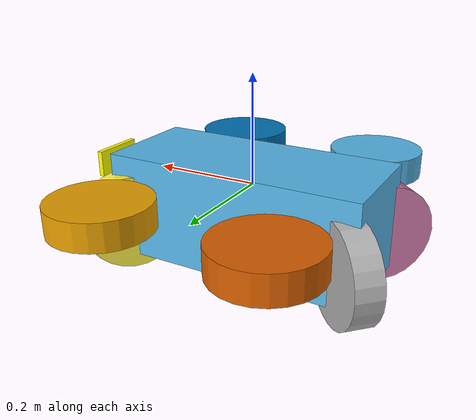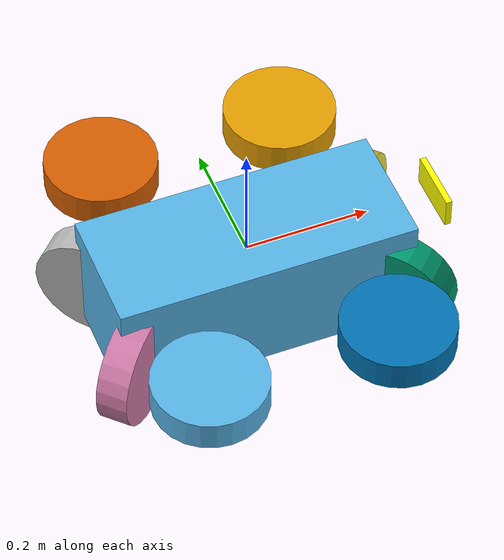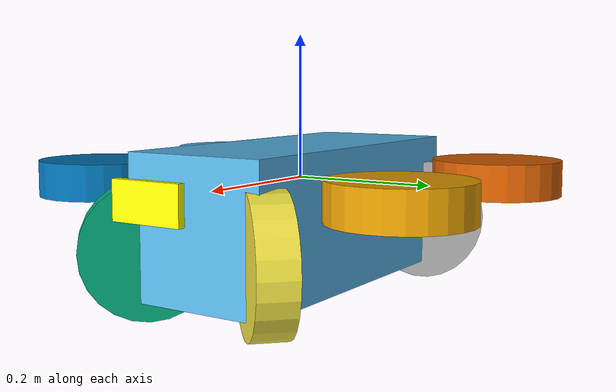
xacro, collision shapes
<?xml version="1.0"?>
<robot name="nemo_auv" xmlns:xacro="http://www.ros.org/wiki/xacro">

    <xacro:property name="ns" value="nemo_auv"/>
    <xacro:include filename="base_link.xacro"/>
    <xacro:include filename="thruster_cw.xacro"/>
    <xacro:include filename="thruster_ccw.xacro"/>
    <xacro:include filename="imu.xacro"/>
    <xacro:include filename="camera_macro.xacro"/>

    <gazebo>
        <plugin filename="gz-sim-joint-state-publisher-system" name="gz::sim::systems::JointStatePublisher"/>

        <plugin
            filename="gz-sim-odometry-publisher-system"
            name="gz::sim::systems::OdometryPublisher">
            <odom_frame>world</odom_frame>
            <dimensions>3</dimensions>
            <robot_base_frame>base_link</robot_base_frame>
            <odom_publish_frequency>20</odom_publish_frequency>
        </plugin>

        <plugin
            filename="gz-sim-pose-publisher-system"
            name="gz::sim::systems::PosePublisher">
            <publish_link_pose>false</publish_link_pose>
            <publish_collision_pose>false</publish_collision_pose>
            <publish_visual_pose>false</publish_visual_pose>
            <publish_nested_model_pose>true</publish_nested_model_pose>
        </plugin>
        <plugin
        filename="gz-sim-hydrodynamics-system"
        name="gz::sim::systems::Hydrodynamics">
            <link_name>base_link</link_name>
            <water_density>1000.0</water_density>
            <!-- Added mass: -->
            <xDotU>0</xDotU>
            <yDotV>0</yDotV>
            <zDotW>0</zDotW>
            <kDotP>0</kDotP>
            <mDotQ>0</mDotQ>
            <nDotR>0</nDotR>
            <!-- First order stability derivative: -->
            <xU>-10.0</xU>
            <yV>-10.0</yV>
            <zW>-5.0</zW>
            <kP>-5.0</kP>
            <mQ>-5.0</mQ>
            <nR>-10.0</nR>
            <!-- Second order stability derivative: -->
            <xUabsU>-58.42</xUabsU>
            <yVabsV>-55.137</yVabsV>
            <zWabsW>-30.0</zWabsW>
            <kPabsP>-0.5</kPabsP>
            <mQabsQ>-0.5</mQabsQ>
            <nRabsR>-0.5</nRabsR>
        </plugin>

    </gazebo>

</robot>

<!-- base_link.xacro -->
<robot xmlns:xacro="http://www.ros.org/wiki/xacro" name="nemo_auv">
    <link name = "base_link" />

    <link name="root_link">
        <visual>
            <origin xyz="0.0 0.0 0.0" rpy="0.0 0.0 0.0"/>
            <geometry>
                <mesh filename="package://nemo_description/meshes/visual_base_link.dae"/>
            </geometry>
        </visual>

        <inertial>
            <mass value="17.655"/>
            <origin xyz = "0.0 0.0 -0.075" rpy = "0 0 0 "/>
            <inertia ixx="0.026" ixy="0.0" ixz="0.0"
                 iyy="0.047" iyz="0.0"
                 izz="0.052"/>
        </inertial>

        <collision>
            <origin xyz="0.0 0.0 -0.048" rpy="0.0 0.0 0.0"/>
            <geometry>
                <box size="0.480 0.2025 0.1920"/>
            </geometry>
        </collision>
    </link>

    <joint name="base_joint" type="fixed">
        <origin xyz="0.0 0.0 0.0" rpy="0.0 0.0 0.0"/>
        <parent link="base_link"/>
        <child link="root_link"/>

    </joint>
</robot>

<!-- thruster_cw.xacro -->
<robot xmlns:xacro="http://www.ros.org/wiki/xacro" name="nemo_auv">
    <xacro:macro name="thruster_cw" params="thruster_id origin_xyz origin_rpy">
        <link name="${ns}/thruster${thruster_id}">
            <visual>
                <geometry>
                    <mesh filename="package://nemo_description/meshes/cwp.dae" scale="1.0 1.0 1.0"/>
                </geometry>
            </visual>

            <inertial>
                <mass value="0.115972005449422"/>
                <inertia ixx="4.709701538510022e-06" ixy="0.0" ixz="0.0" iyy="4.709701538508585e-06" iyz="0.0" izz="3.424149260721648e-06"/>
            </inertial>

            <collision>
                <origin xyz="0 0 0" rpy="0 0 0"/>

                <geometry>
                    <cylinder radius="0.09" length="0.05"/>
                </geometry>

            </collision>
        </link>

        <joint name="thruster${thruster_id}" type="continuous">
            <origin xyz="${origin_xyz}" rpy="${origin_rpy}" />
            <axis xyz="0 0 1" />
            <parent link="root_link" />
            <child link="${ns}/thruster${thruster_id}"/>
            <limits effort="0.5" velocity="5.0"/>
        </joint>

        <gazebo>
            <plugin filename="gz-sim-thruster-system" name="ignition::gazebo::systems::Thruster">
                <namespace>${ns}</namespace>
                <joint_name>thruster${thruster_id}</joint_name>
                <topic>thruster${thruster_id}/cmd</topic>
                <thrust_coefficient>0.011</thrust_coefficient>
                <fluid_density>1000</fluid_density>
                <propeller_diameter>0.090</propeller_diameter>
                <velocity_control>false</velocity_control>
                <use_angvel_cmd>false</use_angvel_cmd>
                <max_thrust_cmd>10</max_thrust_cmd>
                <min_thrust_cmd>-10</min_thrust_cmd>
            </plugin>
        </gazebo>
    </xacro:macro>

    <xacro:thruster_cw thruster_id="1" origin_xyz="0.21370 -0.09262 -0.07877" origin_rpy="0.000000 1.570796 0.785" />
    <xacro:thruster_cw thruster_id="2" origin_xyz="0.21370 0.09053 -0.07877" origin_rpy="0.000000 1.570796 -0.785" />
    <xacro:thruster_cw thruster_id="5" origin_xyz="0.14902 -0.23605 0.000123" origin_rpy="0.000000 0.000000 0.000000" />
    <xacro:thruster_cw thruster_id="8" origin_xyz="-0.15098 0.23395 0.000123" origin_rpy="0.000000 0.000000 0.000000" />

</robot>

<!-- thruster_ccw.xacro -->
<robot xmlns:xacro="http://www.ros.org/wiki/xacro" name="nemo_auv">
    <xacro:macro name="thruster_ccw" params="thruster_id xyz rpy">
        <link name="${ns}/thruster${thruster_id}">
            <visual>
                <geometry>
                    <mesh filename="package://nemo_description/meshes/ccwp.dae" scale="1.0 1.0 1.0"/>
                </geometry>
            </visual>

            <inertial>
                <mass value="0.115972005449422"/>
                <inertia ixx="4.709701538510022e-06" ixy="0.0" ixz="0.0"
                         iyy="4.709701538508585e-06" iyz="0.0" izz="3.424149260721648e-06"/>
            </inertial>
            <collision>
                <origin xyz="0 0 0" rpy="0 0 0"/>

                <geometry>
                    <cylinder radius="0.09" length="0.05"/>
                </geometry>

            </collision>
        </link>
        <joint name="thruster${thruster_id}" type="continuous">
            <origin xyz="${xyz}" rpy="${rpy}"/>

            <axis xyz="0 0 1" />
            <parent link="root_link" />
            <child link="${ns}/thruster${thruster_id}" />
            <limits effort="0.5" velocity="5.0"/>
        </joint>
        <gazebo>
            <plugin
                filename="ignition-gazebo-thruster-system"
                name="gz::sim::systems::Thruster">
                <namespace>${ns}</namespace>
                <joint_name>thruster${thruster_id}</joint_name>
                <topic>thruster${thruster_id}/cmd</topic>
                <thrust_coefficient>0.011</thrust_coefficient>
                <fluid_density>1000</fluid_density>
                <propeller_diameter>0.090</propeller_diameter>
                <velocity_control>false</velocity_control>
                <use_angvel_cmd>false</use_angvel_cmd>
                <max_thrust_cmd>10</max_thrust_cmd>
                <min_thrust_cmd>-10</min_thrust_cmd>
            </plugin>
        </gazebo>
    </xacro:macro>
    <xacro:thruster_ccw thruster_id="3" xyz="-0.21566 -0.09262 -0.07878" rpy="0.000000 1.570796 2.356194"/>
    <xacro:thruster_ccw thruster_id="4" xyz="-0.21566 0.09053 -0.07878" rpy="0.000000 1.570796 -2.356194"/>
    <xacro:thruster_ccw thruster_id="6" xyz="0.14902 0.23395 0.000123" rpy="0.000000 0.000000 0.000000"/>
    <xacro:thruster_ccw thruster_id="7" xyz="-0.15098 -0.23605 0.000123" rpy="0.000000 0.000000 0.000000"/>

</robot>

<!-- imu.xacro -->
<robot xmlns:xacro="http://www.ros.org/wiki/xacro" name="nemo_auv">
    <xacro:macro name="imu" params="name xyz rpy">
        <link name="nemo_auv/${name}"/>
        <gazebo reference="nemo_auv/${name}">
            <sensor name="${name}" type="imu">
                <always_on>1</always_on>
                <update_rate>1</update_rate>
                <visualize>true</visualize>
                <topic>IMU/${name}</topic>
                <imu>
                    <angular_velocity>
                        <x>
                            <noise type="gaussian">
                            <mean>0</mean>
                            <stddev>0.009</stddev>
                            <bias_mean>0.00075</bias_mean>
                            <bias_stddev>0.005</bias_stddev>
                            <dynamic_bias_stddev>0.00002</dynamic_bias_stddev>
                            <dynamic_bias_correlation_time>400.0</dynamic_bias_correlation_time>
                            <precision>0.00025</precision>
                            </noise>
                        </x>
                        <y>
                            <noise type="gaussian">
                            <mean>0</mean>
                            <stddev>0.009</stddev>
                            <bias_mean>0.00075</bias_mean>
                            <bias_stddev>0.005</bias_stddev>
                            <dynamic_bias_stddev>0.00002</dynamic_bias_stddev>
                            <dynamic_bias_correlation_time>400.0</dynamic_bias_correlation_time>
                            <precision>0.00025</precision>
                            </noise>
                        </y>
                        <z>
                            <noise type="gaussian">
                            <mean>0</mean>
                            <stddev>0.009</stddev>
                            <bias_mean>0.00075</bias_mean>
                            <bias_stddev>0.005</bias_stddev>
                            <dynamic_bias_stddev>0.00002</dynamic_bias_stddev>
                            <dynamic_bias_correlation_time>400.0</dynamic_bias_correlation_time>
                            <precision>0.00025</precision>
                            </noise>
                        </z>
                    </angular_velocity>
                    <linear_acceleration>
                    <x>
                        <noise type="gaussian">
                        <mean>0</mean>
                        <stddev>0.021</stddev>
                        <bias_mean>0.05</bias_mean>
                        <bias_stddev>0.0075</bias_stddev>
                        <dynamic_bias_stddev>0.000375</dynamic_bias_stddev>
                        <dynamic_bias_correlation_time>175.0</dynamic_bias_correlation_time>
                        <precision>0.005</precision>
                        </noise>
                    </x>
                    <y>
                        <noise type="gaussian">
                        <mean>0</mean>
                        <stddev>0.021</stddev>
                        <bias_mean>0.05</bias_mean>
                        <bias_stddev>0.0075</bias_stddev>
                        <dynamic_bias_stddev>0.000375</dynamic_bias_stddev>
                        <dynamic_bias_correlation_time>175.0</dynamic_bias_correlation_time>
                        <precision>0.005</precision>
                        </noise>
                    </y>
                    <z>
                        <noise type="gaussian">
                        <mean>0</mean>
                        <stddev>0.021</stddev>
                        <bias_mean>0.05</bias_mean>
                        <bias_stddev>0.0075</bias_stddev>
                        <dynamic_bias_stddev>0.000375</dynamic_bias_stddev>
                        <dynamic_bias_correlation_time>175.0</dynamic_bias_correlation_time>
                        <precision>0.005</precision>
                        </noise>
                    </z>
                    </linear_acceleration>
                    <orientation_reference_frame>
                        <localization>ENU</localization>
                    </orientation_reference_frame>
                </imu>
            </sensor>
        </gazebo>

        <joint name="${name}_joint" type="fixed">
            <origin xyz="${xyz}" rpy="${rpy}"/>
            <parent link="base_link"/>
            <child link="nemo_auv/${name}"/>
        </joint>
    </xacro:macro>

    <xacro:imu name="VectorNav1" xyz = "0.0 0.0 0.2" rpy = "0.0 0.0 0.0"/>
</robot>

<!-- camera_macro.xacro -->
<robot xmlns:xacro="http://www.ros.org/wiki/xacro" name="nemo_auv">

    <xacro:macro name="box_inertia" params="m x y z o_xyz o_rpy">
        <inertial>
            <mass value="${m}" />
            <origin xyz="${o_xyz}" rpy="${o_rpy}" />
            <inertia ixx="${(m/12) * (y*y + z*z)}" ixy="0" ixz="0"
                     iyy="${(m/12) * (x*x + z*z)}" iyz="0"
                     izz="${(m/12) * (x*x + y*y)}" />
        </inertial>
    </xacro:macro>

    <xacro:property name="camera_length" value="0.01" />
    <xacro:property name="camera_width" value="0.1" />
    <xacro:property name="camera_height" value="0.05" />

    <link name="camera_link">
        <visual>
            <geometry>
                <box size="${camera_length} ${camera_width} ${camera_height}" />
            </geometry>

            <material name="yellow_material">
                <color rgba="1.0 1.0 0.0 1.0"/>
            </material>

        </visual>

        <collision>

            <geometry>
                <box size="${camera_length} ${camera_width} ${camera_height}" />
            </geometry>

        </collision>

        <xacro:box_inertia m="0.1" x="${camera_length}" y="${camera_width}" z="${camera_height}"
                           o_xyz="0 0 0" o_rpy="0 0 0" />
    </link>

    <joint name="base_camera_joint" type="fixed">
        <parent link="root_link" />
        <child link="camera_link" />
        <origin xyz="0.315 0.0 0.0" rpy="0 0 0" />
    </joint>

    <link name="camera_link_optical" />

    <joint name="camera_optical_joint" type="fixed">
        <origin xyz="0 0 0" rpy="${-pi/2} 0 ${-pi/2}"/>
        <parent link="camera_link"/>
        <child link="camera_link_optical"/>
    </joint>

    <gazebo reference="camera_link">
        <sensor name="forward_camera" type="camera">
            <camera>
                <horizontal_fov>1.3962634</horizontal_fov>
                <image>
                    <width>640</width>
                    <height>480</height>
                    <format>R8G8B8</format>
                </image>
                <clip>
                    <near>0.1</near>
                    <far>15</far>
                </clip>
                <noise>
                    <type>gaussian</type>
                    <mean>0.0</mean>
                    <stddev>0.007</stddev>
                </noise>
                <optical_frame_id>camera_link_optical</optical_frame_id>
                <camera_info_topic>/nemo_auv/camera/camera_info</camera_info_topic>
            </camera>
            <always_on>1</always_on>
            <update_rate>20</update_rate>
            <visualize>true</visualize>
            <topic>/nemo_auv/camera/image_raw</topic>
        </sensor>
    </gazebo>

</robot>
